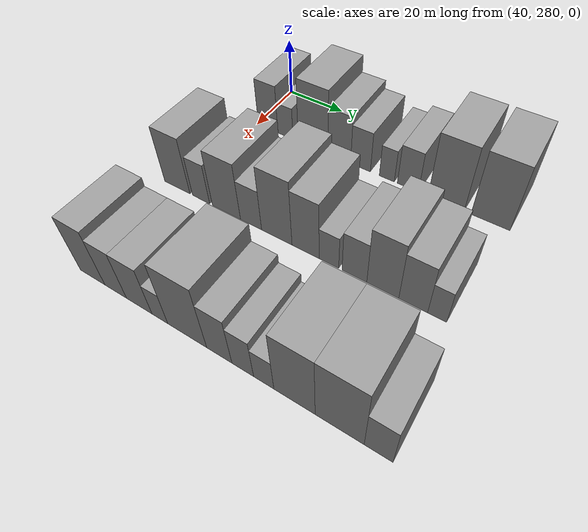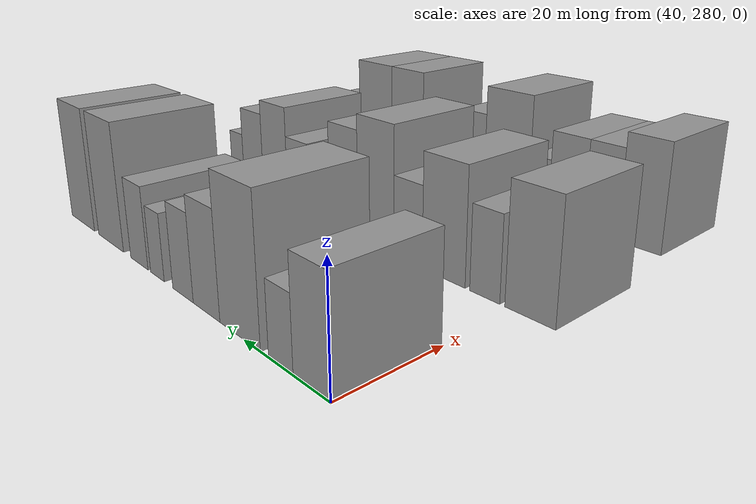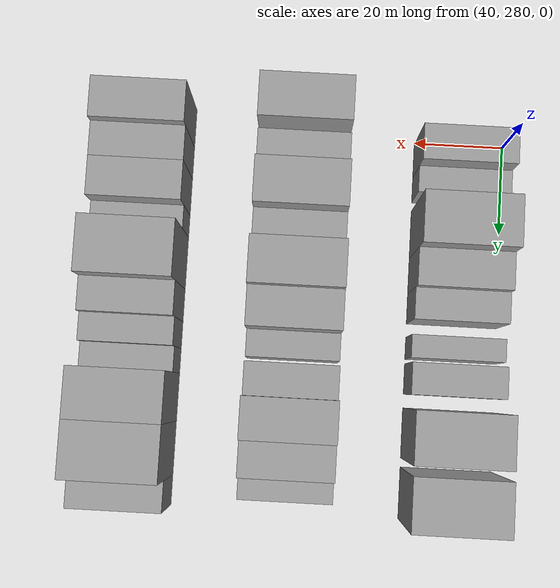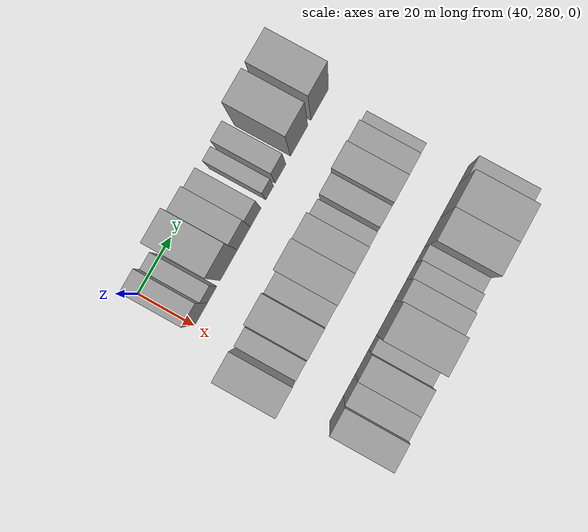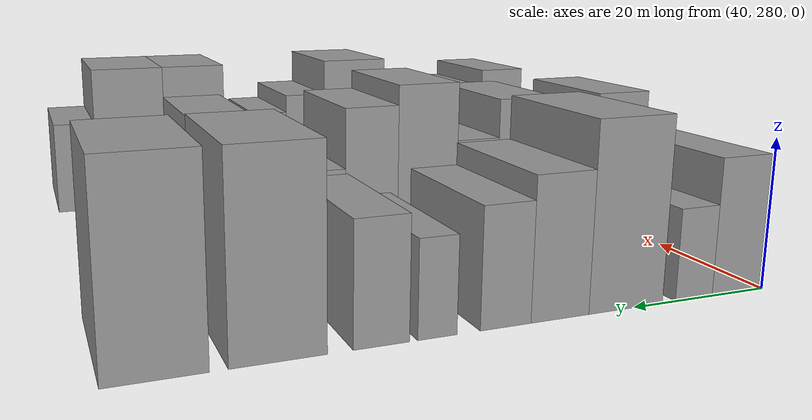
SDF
<sdf version="1.6">
 <world name="default">
  <model name="building_73">
   <static>1</static>
   <pose>50.0000 284.2256 0 0.000000 0.000000 0.000000</pose>
   <link name="link">
    <pose>0 0 9.00 0 0 0</pose>
    <collision name="collision"><geometry><box><size>20.0000 7.6284 18.0000</size></box></geometry></collision>
    <visual name="visual">
     <cast_shadows>0</cast_shadows>
     <geometry><box><size>20.0000 7.6284 18.0000</size></box></geometry>
     <material>
      <script>
       <uri>model://grey_wall/materials/scripts</uri>
       <uri>model://grey_wall/materials/textures</uri>
       <name>vrc/grey_wall</name>
      </script>
     </material>
    </visual>
   </link>
  </model>
  <model name="building_74">
   <static>1</static>
   <pose>50.0000 290.9055 0 0.000000 0.000000 0.000000</pose>
   <link name="link">
    <pose>0 0 6.00 0 0 0</pose>
    <collision name="collision"><geometry><box><size>20.0000 5.7315 12.0000</size></box></geometry></collision>
    <visual name="visual">
     <cast_shadows>0</cast_shadows>
     <geometry><box><size>20.0000 5.7315 12.0000</size></box></geometry>
     <material>
      <script>
       <uri>model://grey_wall/materials/scripts</uri>
       <uri>model://grey_wall/materials/textures</uri>
       <name>vrc/grey_wall</name>
      </script>
     </material>
    </visual>
   </link>
  </model>
  <model name="building_75">
   <static>1</static>
   <pose>50.0000 301.1852 0 0.000000 0.000000 0.000000</pose>
   <link name="link">
    <pose>0 0 12.00 0 0 0</pose>
    <collision name="collision"><geometry><box><size>20.0000 10.8279 24.0000</size></box></geometry></collision>
    <visual name="visual">
     <cast_shadows>0</cast_shadows>
     <geometry><box><size>20.0000 10.8279 24.0000</size></box></geometry>
     <material>
      <script>
       <uri>model://grey_wall/materials/scripts</uri>
       <uri>model://grey_wall/materials/textures</uri>
       <name>vrc/grey_wall</name>
      </script>
     </material>
    </visual>
   </link>
  </model>
  <model name="building_76">
   <static>1</static>
   <pose>50.0000 310.6204 0 0.000000 0.000000 0.000000</pose>
   <link name="link">
    <pose>0 0 9.00 0 0 0</pose>
    <collision name="collision"><geometry><box><size>20.0000 8.0425 18.0000</size></box></geometry></collision>
    <visual name="visual">
     <cast_shadows>0</cast_shadows>
     <geometry><box><size>20.0000 8.0425 18.0000</size></box></geometry>
     <material>
      <script>
       <uri>model://grey_wall/materials/scripts</uri>
       <uri>model://grey_wall/materials/textures</uri>
       <name>vrc/grey_wall</name>
      </script>
     </material>
    </visual>
   </link>
  </model>
  <model name="building_77">
   <static>1</static>
   <pose>50.0000 318.0080 0 0.000000 0.000000 0.000000</pose>
   <link name="link">
    <pose>0 0 7.50 0 0 0</pose>
    <collision name="collision"><geometry><box><size>20.0000 6.7326 15.0000</size></box></geometry></collision>
    <visual name="visual">
     <cast_shadows>0</cast_shadows>
     <geometry><box><size>20.0000 6.7326 15.0000</size></box></geometry>
     <material>
      <script>
       <uri>model://grey_wall/materials/scripts</uri>
       <uri>model://grey_wall/materials/textures</uri>
       <name>vrc/grey_wall</name>
      </script>
     </material>
    </visual>
   </link>
  </model>
  <model name="building_78">
   <static>1</static>
   <pose>50.0000 326.8436 0 0.000000 0.000000 0.000000</pose>
   <link name="link">
    <pose>0 0 6.00 0 0 0</pose>
    <collision name="collision"><geometry><box><size>20.0000 4.9386 12.0000</size></box></geometry></collision>
    <visual name="visual">
     <cast_shadows>0</cast_shadows>
     <geometry><box><size>20.0000 4.9386 12.0000</size></box></geometry>
     <material>
      <script>
       <uri>model://grey_wall/materials/scripts</uri>
       <uri>model://grey_wall/materials/textures</uri>
       <name>vrc/grey_wall</name>
      </script>
     </material>
    </visual>
   </link>
  </model>
  <model name="building_79">
   <static>1</static>
   <pose>50.0000 333.6942 0 0.000000 0.000000 0.000000</pose>
   <link name="link">
    <pose>0 0 7.50 0 0 0</pose>
    <collision name="collision"><geometry><box><size>20.0000 6.7625 15.0000</size></box></geometry></collision>
    <visual name="visual">
     <cast_shadows>0</cast_shadows>
     <geometry><box><size>20.0000 6.7625 15.0000</size></box></geometry>
     <material>
      <script>
       <uri>model://grey_wall/materials/scripts</uri>
       <uri>model://grey_wall/materials/textures</uri>
       <name>vrc/grey_wall</name>
      </script>
     </material>
    </visual>
   </link>
  </model>
  <model name="building_80">
   <static>1</static>
   <pose>50.0000 345.5706 0 0.000000 0.000000 0.000000</pose>
   <link name="link">
    <pose>0 0 12.00 0 0 0</pose>
    <collision name="collision"><geometry><box><size>20.0000 10.9902 24.0000</size></box></geometry></collision>
    <visual name="visual">
     <cast_shadows>0</cast_shadows>
     <geometry><box><size>20.0000 10.9902 24.0000</size></box></geometry>
     <material>
      <script>
       <uri>model://grey_wall/materials/scripts</uri>
       <uri>model://grey_wall/materials/textures</uri>
       <name>vrc/grey_wall</name>
      </script>
     </material>
    </visual>
   </link>
  </model>
  <model name="building_81">
   <static>1</static>
   <pose>50.0000 358.6743 0 0.000000 0.000000 0.000000</pose>
   <link name="link">
    <pose>0 0 12.00 0 0 0</pose>
    <collision name="collision"><geometry><box><size>20.0000 11.2172 24.0000</size></box></geometry></collision>
    <visual name="visual">
     <cast_shadows>0</cast_shadows>
     <geometry><box><size>20.0000 11.2172 24.0000</size></box></geometry>
     <material>
      <script>
       <uri>model://grey_wall/materials/scripts</uri>
       <uri>model://grey_wall/materials/textures</uri>
       <name>vrc/grey_wall</name>
      </script>
     </material>
    </visual>
   </link>
  </model>
  <model name="building_151">
   <static>1</static>
   <pose>85.0000 276.7346 0 0.000000 0.000000 0.000000</pose>
   <link name="link">
    <pose>0 0 10.50 0 0 0</pose>
    <collision name="collision"><geometry><box><size>20.0000 9.5169 21.0000</size></box></geometry></collision>
    <visual name="visual">
     <cast_shadows>0</cast_shadows>
     <geometry><box><size>20.0000 9.5169 21.0000</size></box></geometry>
     <material>
      <script>
       <uri>model://grey_wall/materials/scripts</uri>
       <uri>model://grey_wall/materials/textures</uri>
       <name>vrc/grey_wall</name>
      </script>
     </material>
    </visual>
   </link>
  </model>
  <model name="building_152">
   <static>1</static>
   <pose>85.0000 285.6098 0 0.000000 0.000000 0.000000</pose>
   <link name="link">
    <pose>0 0 7.50 0 0 0</pose>
    <collision name="collision"><geometry><box><size>20.0000 6.2335 15.0000</size></box></geometry></collision>
    <visual name="visual">
     <cast_shadows>0</cast_shadows>
     <geometry><box><size>20.0000 6.2335 15.0000</size></box></geometry>
     <material>
      <script>
       <uri>model://grey_wall/materials/scripts</uri>
       <uri>model://grey_wall/materials/textures</uri>
       <name>vrc/grey_wall</name>
      </script>
     </material>
    </visual>
   </link>
  </model>
  <model name="building_153">
   <static>1</static>
   <pose>85.0000 294.6538 0 0.000000 0.000000 0.000000</pose>
   <link name="link">
    <pose>0 0 10.50 0 0 0</pose>
    <collision name="collision"><geometry><box><size>20.0000 9.8545 21.0000</size></box></geometry></collision>
    <visual name="visual">
     <cast_shadows>0</cast_shadows>
     <geometry><box><size>20.0000 9.8545 21.0000</size></box></geometry>
     <material>
      <script>
       <uri>model://grey_wall/materials/scripts</uri>
       <uri>model://grey_wall/materials/textures</uri>
       <name>vrc/grey_wall</name>
      </script>
     </material>
    </visual>
   </link>
  </model>
  <model name="building_154">
   <static>1</static>
   <pose>85.0000 303.1597 0 0.000000 0.000000 0.000000</pose>
   <link name="link">
    <pose>0 0 7.50 0 0 0</pose>
    <collision name="collision"><geometry><box><size>20.0000 7.1572 15.0000</size></box></geometry></collision>
    <visual name="visual">
     <cast_shadows>0</cast_shadows>
     <geometry><box><size>20.0000 7.1572 15.0000</size></box></geometry>
     <material>
      <script>
       <uri>model://grey_wall/materials/scripts</uri>
       <uri>model://grey_wall/materials/textures</uri>
       <name>vrc/grey_wall</name>
      </script>
     </material>
    </visual>
   </link>
  </model>
  <model name="building_155">
   <static>1</static>
   <pose>85.0000 311.6816 0 0.000000 0.000000 0.000000</pose>
   <link name="link">
    <pose>0 0 12.00 0 0 0</pose>
    <collision name="collision"><geometry><box><size>20.0000 9.8867 24.0000</size></box></geometry></collision>
    <visual name="visual">
     <cast_shadows>0</cast_shadows>
     <geometry><box><size>20.0000 9.8867 24.0000</size></box></geometry>
     <material>
      <script>
       <uri>model://grey_wall/materials/scripts</uri>
       <uri>model://grey_wall/materials/textures</uri>
       <name>vrc/grey_wall</name>
      </script>
     </material>
    </visual>
   </link>
  </model>
  <model name="building_156">
   <static>1</static>
   <pose>85.0000 320.8494 0 0.000000 0.000000 0.000000</pose>
   <link name="link">
    <pose>0 0 10.50 0 0 0</pose>
    <collision name="collision"><geometry><box><size>20.0000 8.4489 21.0000</size></box></geometry></collision>
    <visual name="visual">
     <cast_shadows>0</cast_shadows>
     <geometry><box><size>20.0000 8.4489 21.0000</size></box></geometry>
     <material>
      <script>
       <uri>model://grey_wall/materials/scripts</uri>
       <uri>model://grey_wall/materials/textures</uri>
       <name>vrc/grey_wall</name>
      </script>
     </material>
    </visual>
   </link>
  </model>
  <model name="building_157">
   <static>1</static>
   <pose>85.0000 328.0253 0 0.000000 0.000000 0.000000</pose>
   <link name="link">
    <pose>0 0 6.00 0 0 0</pose>
    <collision name="collision"><geometry><box><size>20.0000 5.9028 12.0000</size></box></geometry></collision>
    <visual name="visual">
     <cast_shadows>0</cast_shadows>
     <geometry><box><size>20.0000 5.9028 12.0000</size></box></geometry>
     <material>
      <script>
       <uri>model://grey_wall/materials/scripts</uri>
       <uri>model://grey_wall/materials/textures</uri>
       <name>vrc/grey_wall</name>
      </script>
     </material>
    </visual>
   </link>
  </model>
  <model name="building_158">
   <static>1</static>
   <pose>85.0000 335.5677 0 0.000000 0.000000 0.000000</pose>
   <link name="link">
    <pose>0 0 7.50 0 0 0</pose>
    <collision name="collision"><geometry><box><size>20.0000 7.1819 15.0000</size></box></geometry></collision>
    <visual name="visual">
     <cast_shadows>0</cast_shadows>
     <geometry><box><size>20.0000 7.1819 15.0000</size></box></geometry>
     <material>
      <script>
       <uri>model://grey_wall/materials/scripts</uri>
       <uri>model://grey_wall/materials/textures</uri>
       <name>vrc/grey_wall</name>
      </script>
     </material>
    </visual>
   </link>
  </model>
  <model name="building_159">
   <static>1</static>
   <pose>85.0000 343.6272 0 0.000000 0.000000 0.000000</pose>
   <link name="link">
    <pose>0 0 10.50 0 0 0</pose>
    <collision name="collision"><geometry><box><size>20.0000 8.9371 21.0000</size></box></geometry></collision>
    <visual name="visual">
     <cast_shadows>0</cast_shadows>
     <geometry><box><size>20.0000 8.9371 21.0000</size></box></geometry>
     <material>
      <script>
       <uri>model://grey_wall/materials/scripts</uri>
       <uri>model://grey_wall/materials/textures</uri>
       <name>vrc/grey_wall</name>
      </script>
     </material>
    </visual>
   </link>
  </model>
  <model name="building_160">
   <static>1</static>
   <pose>85.0000 351.9545 0 0.000000 0.000000 0.000000</pose>
   <link name="link">
    <pose>0 0 9.00 0 0 0</pose>
    <collision name="collision"><geometry><box><size>20.0000 7.7174 18.0000</size></box></geometry></collision>
    <visual name="visual">
     <cast_shadows>0</cast_shadows>
     <geometry><box><size>20.0000 7.7174 18.0000</size></box></geometry>
     <material>
      <script>
       <uri>model://grey_wall/materials/scripts</uri>
       <uri>model://grey_wall/materials/textures</uri>
       <name>vrc/grey_wall</name>
      </script>
     </material>
    </visual>
   </link>
  </model>
  <model name="building_161">
   <static>1</static>
   <pose>85.0000 358.2892 0 0.000000 0.000000 0.000000</pose>
   <link name="link">
    <pose>0 0 6.00 0 0 0</pose>
    <collision name="collision"><geometry><box><size>20.0000 4.9520 12.0000</size></box></geometry></collision>
    <visual name="visual">
     <cast_shadows>0</cast_shadows>
     <geometry><box><size>20.0000 4.9520 12.0000</size></box></geometry>
     <material>
      <script>
       <uri>model://grey_wall/materials/scripts</uri>
       <uri>model://grey_wall/materials/textures</uri>
       <name>vrc/grey_wall</name>
      </script>
     </material>
    </visual>
   </link>
  </model>
  <model name="building_232">
   <static>1</static>
   <pose>120.0000 279.3277 0 0.000000 0.000000 0.000000</pose>
   <link name="link">
    <pose>0 0 10.50 0 0 0</pose>
    <collision name="collision"><geometry><box><size>20.0000 8.7132 21.0000</size></box></geometry></collision>
    <visual name="visual">
     <cast_shadows>0</cast_shadows>
     <geometry><box><size>20.0000 8.7132 21.0000</size></box></geometry>
     <material>
      <script>
       <uri>model://grey_wall/materials/scripts</uri>
       <uri>model://grey_wall/materials/textures</uri>
       <name>vrc/grey_wall</name>
      </script>
     </material>
    </visual>
   </link>
  </model>
  <model name="building_233">
   <static>1</static>
   <pose>120.0000 287.3818 0 0.000000 0.000000 0.000000</pose>
   <link name="link">
    <pose>0 0 9.00 0 0 0</pose>
    <collision name="collision"><geometry><box><size>20.0000 7.3951 18.0000</size></box></geometry></collision>
    <visual name="visual">
     <cast_shadows>0</cast_shadows>
     <geometry><box><size>20.0000 7.3951 18.0000</size></box></geometry>
     <material>
      <script>
       <uri>model://grey_wall/materials/scripts</uri>
       <uri>model://grey_wall/materials/textures</uri>
       <name>vrc/grey_wall</name>
      </script>
     </material>
    </visual>
   </link>
  </model>
  <model name="building_234">
   <static>1</static>
   <pose>120.0000 295.2759 0 0.000000 0.000000 0.000000</pose>
   <link name="link">
    <pose>0 0 9.00 0 0 0</pose>
    <collision name="collision"><geometry><box><size>20.0000 8.3931 18.0000</size></box></geometry></collision>
    <visual name="visual">
     <cast_shadows>0</cast_shadows>
     <geometry><box><size>20.0000 8.3931 18.0000</size></box></geometry>
     <material>
      <script>
       <uri>model://grey_wall/materials/scripts</uri>
       <uri>model://grey_wall/materials/textures</uri>
       <name>vrc/grey_wall</name>
      </script>
     </material>
    </visual>
   </link>
  </model>
  <model name="building_235">
   <static>1</static>
   <pose>120.0000 301.9731 0 0.000000 0.000000 0.000000</pose>
   <link name="link">
    <pose>0 0 6.00 0 0 0</pose>
    <collision name="collision"><geometry><box><size>20.0000 5.0014 12.0000</size></box></geometry></collision>
    <visual name="visual">
     <cast_shadows>0</cast_shadows>
     <geometry><box><size>20.0000 5.0014 12.0000</size></box></geometry>
     <material>
      <script>
       <uri>model://grey_wall/materials/scripts</uri>
       <uri>model://grey_wall/materials/textures</uri>
       <name>vrc/grey_wall</name>
      </script>
     </material>
    </visual>
   </link>
  </model>
  <model name="building_236">
   <static>1</static>
   <pose>120.0000 310.4004 0 0.000000 0.000000 0.000000</pose>
   <link name="link">
    <pose>0 0 12.00 0 0 0</pose>
    <collision name="collision"><geometry><box><size>20.0000 11.8532 24.0000</size></box></geometry></collision>
    <visual name="visual">
     <cast_shadows>0</cast_shadows>
     <geometry><box><size>20.0000 11.8532 24.0000</size></box></geometry>
     <material>
      <script>
       <uri>model://grey_wall/materials/scripts</uri>
       <uri>model://grey_wall/materials/textures</uri>
       <name>vrc/grey_wall</name>
      </script>
     </material>
    </visual>
   </link>
  </model>
  <model name="building_237">
   <static>1</static>
   <pose>120.0000 319.9729 0 0.000000 0.000000 0.000000</pose>
   <link name="link">
    <pose>0 0 9.00 0 0 0</pose>
    <collision name="collision"><geometry><box><size>20.0000 7.2918 18.0000</size></box></geometry></collision>
    <visual name="visual">
     <cast_shadows>0</cast_shadows>
     <geometry><box><size>20.0000 7.2918 18.0000</size></box></geometry>
     <material>
      <script>
       <uri>model://grey_wall/materials/scripts</uri>
       <uri>model://grey_wall/materials/textures</uri>
       <name>vrc/grey_wall</name>
      </script>
     </material>
    </visual>
   </link>
  </model>
  <model name="building_238">
   <static>1</static>
   <pose>120.0000 326.6345 0 0.000000 0.000000 0.000000</pose>
   <link name="link">
    <pose>0 0 7.50 0 0 0</pose>
    <collision name="collision"><geometry><box><size>20.0000 6.0314 15.0000</size></box></geometry></collision>
    <visual name="visual">
     <cast_shadows>0</cast_shadows>
     <geometry><box><size>20.0000 6.0314 15.0000</size></box></geometry>
     <material>
      <script>
       <uri>model://grey_wall/materials/scripts</uri>
       <uri>model://grey_wall/materials/textures</uri>
       <name>vrc/grey_wall</name>
      </script>
     </material>
    </visual>
   </link>
  </model>
  <model name="building_239">
   <static>1</static>
   <pose>120.0000 332.3789 0 0.000000 0.000000 0.000000</pose>
   <link name="link">
    <pose>0 0 6.00 0 0 0</pose>
    <collision name="collision"><geometry><box><size>20.0000 5.4575 12.0000</size></box></geometry></collision>
    <visual name="visual">
     <cast_shadows>0</cast_shadows>
     <geometry><box><size>20.0000 5.4575 12.0000</size></box></geometry>
     <material>
      <script>
       <uri>model://grey_wall/materials/scripts</uri>
       <uri>model://grey_wall/materials/textures</uri>
       <name>vrc/grey_wall</name>
      </script>
     </material>
    </visual>
   </link>
  </model>
  <model name="building_240">
   <static>1</static>
   <pose>120.0000 340.4174 0 0.000000 0.000000 0.000000</pose>
   <link name="link">
    <pose>0 0 12.00 0 0 0</pose>
    <collision name="collision"><geometry><box><size>20.0000 10.6194 24.0000</size></box></geometry></collision>
    <visual name="visual">
     <cast_shadows>0</cast_shadows>
     <geometry><box><size>20.0000 10.6194 24.0000</size></box></geometry>
     <material>
      <script>
       <uri>model://grey_wall/materials/scripts</uri>
       <uri>model://grey_wall/materials/textures</uri>
       <name>vrc/grey_wall</name>
      </script>
     </material>
    </visual>
   </link>
  </model>
  <model name="building_241">
   <static>1</static>
   <pose>120.0000 351.6342 0 0.000000 0.000000 0.000000</pose>
   <link name="link">
    <pose>0 0 12.00 0 0 0</pose>
    <collision name="collision"><geometry><box><size>20.0000 11.8143 24.0000</size></box></geometry></collision>
    <visual name="visual">
     <cast_shadows>0</cast_shadows>
     <geometry><box><size>20.0000 11.8143 24.0000</size></box></geometry>
     <material>
      <script>
       <uri>model://grey_wall/materials/scripts</uri>
       <uri>model://grey_wall/materials/textures</uri>
       <name>vrc/grey_wall</name>
      </script>
     </material>
    </visual>
   </link>
  </model>
  <model name="building_242">
   <static>1</static>
   <pose>120.0000 360.8323 0 0.000000 0.000000 0.000000</pose>
   <link name="link">
    <pose>0 0 7.50 0 0 0</pose>
    <collision name="collision"><geometry><box><size>20.0000 6.5818 15.0000</size></box></geometry></collision>
    <visual name="visual">
     <cast_shadows>0</cast_shadows>
     <geometry><box><size>20.0000 6.5818 15.0000</size></box></geometry>
     <material>
      <script>
       <uri>model://grey_wall/materials/scripts</uri>
       <uri>model://grey_wall/materials/textures</uri>
       <name>vrc/grey_wall</name>
      </script>
     </material>
    </visual>
   </link>
  </model>
 </world>
</sdf>
